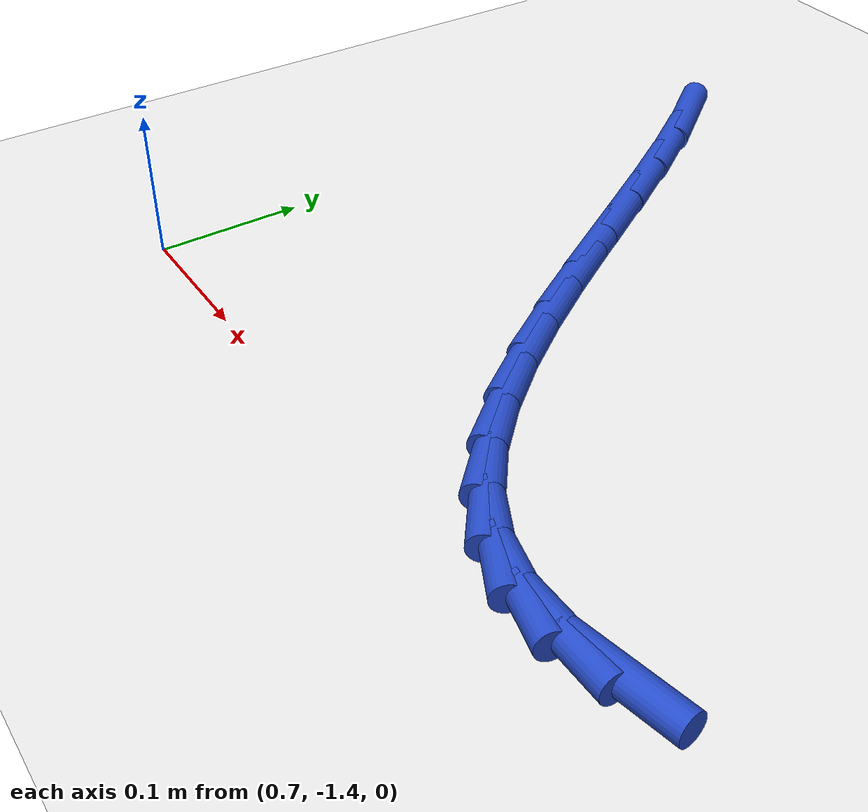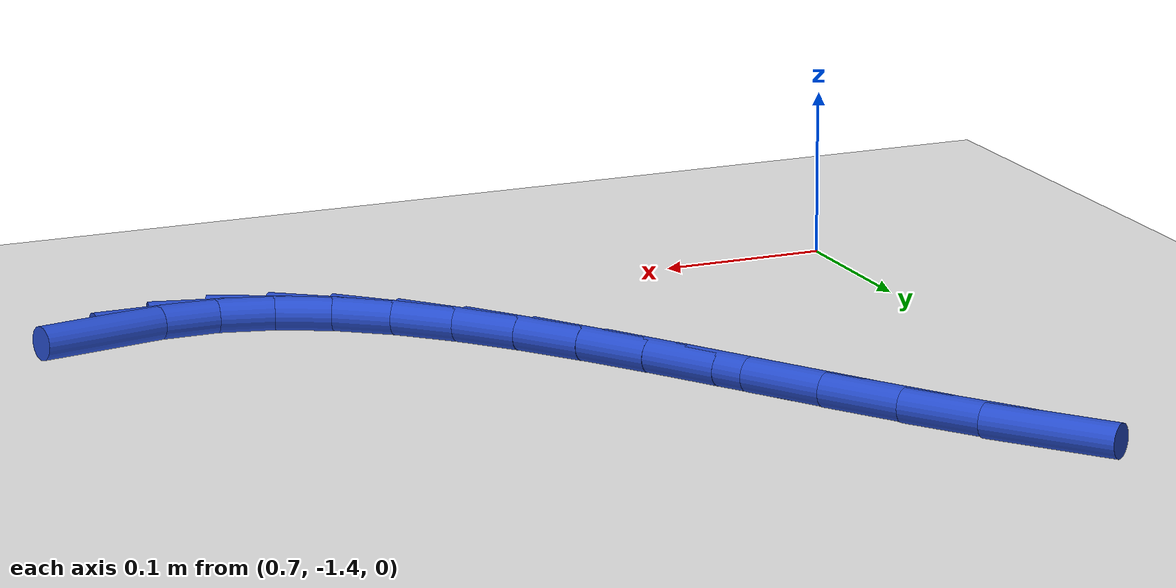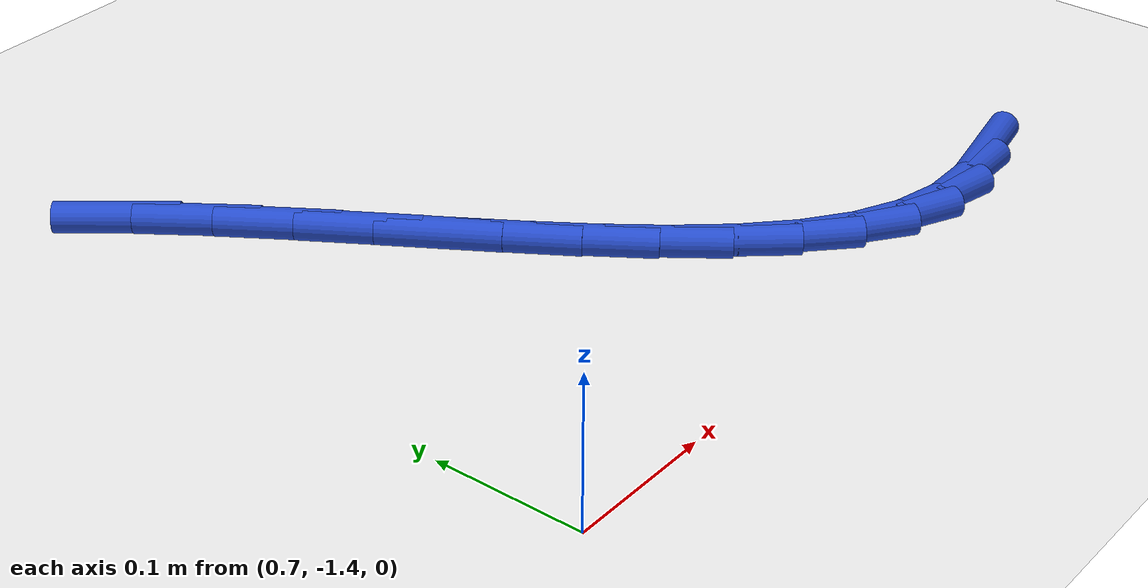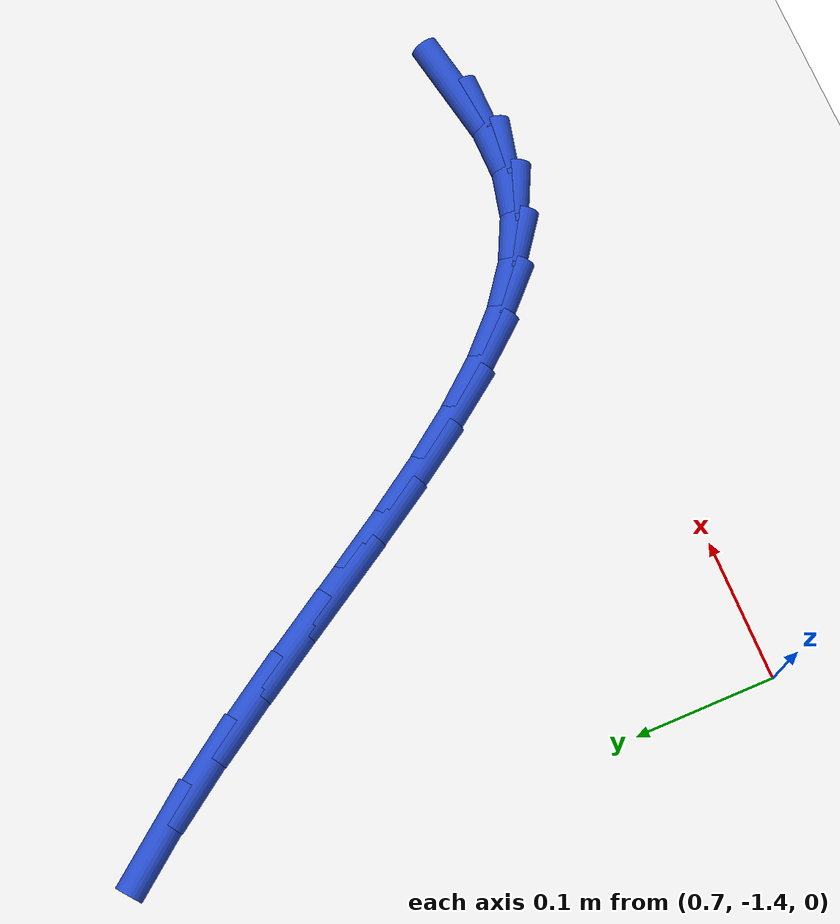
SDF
<sdf version="1.6">
 <world name="default">
  <model name="ground_plane">
   <static>1</static>
   <link name="link">
    <collision name="collision">
     <geometry><plane><normal>0 0 1</normal><size>100 100</size></plane></geometry>
     <surface><friction><ode><mu>100</mu><mu2>50</mu2></ode></friction></surface>
    </collision>
    <visual name="visual">
     <cast_shadows>0</cast_shadows>
     <geometry><plane><normal>0 0 1</normal><size>100 100</size></plane></geometry>
     <material>
      <script><uri>file://media/materials/scripts/gazebo.material</uri><name>Gazebo/WhiteGlow</name></script>
     </material>
    </visual>
   </link>
  </model>
  <model name="line">
   <link name="link_136">
    <pose>1.1687083589276375 -1.371321412251057 0.01 0 1.57 0.1909762075728887</pose>
    <collision name="collision">
     <geometry><cylinder><radius>0.01</radius><length>0.08</length></cylinder></geometry>
    </collision>
    <visual name="visual">
     <material>
      <script><name>Gazebo/Blue</name><uri>file://media/materials/scripts/gazebo.material</uri></script>
     </material>
     <geometry><cylinder><radius>0.01</radius><length>0.08</length></cylinder></geometry>
    </visual>
   </link>
   <link name="link_137">
    <pose>1.131497150620721 -1.3785155423185427 0.01 0 1.57 0.00800130340259082</pose>
    <collision name="collision">
     <geometry><cylinder><radius>0.01</radius><length>0.08</length></cylinder></geometry>
    </collision>
    <visual name="visual">
     <material>
      <script><name>Gazebo/Blue</name><uri>file://media/materials/scripts/gazebo.material</uri></script>
     </material>
     <geometry><cylinder><radius>0.01</radius><length>0.08</length></cylinder></geometry>
    </visual>
   </link>
   <link name="link_138">
    <pose>1.0963750646653139 -1.378796570781657 0.01 0 1.57 -0.23026580055183332</pose>
    <collision name="collision">
     <geometry><cylinder><radius>0.01</radius><length>0.08</length></cylinder></geometry>
    </collision>
    <visual name="visual">
     <material>
      <script><name>Gazebo/Blue</name><uri>file://media/materials/scripts/gazebo.material</uri></script>
     </material>
     <geometry><cylinder><radius>0.01</radius><length>0.08</length></cylinder></geometry>
    </visual>
   </link>
   <link name="link_139">
    <pose>1.0634215293695404 -1.3710714793836298 0.01 0 1.57 -0.45424558994043807</pose>
    <collision name="collision">
     <geometry><cylinder><radius>0.01</radius><length>0.08</length></cylinder></geometry>
    </collision>
    <visual name="visual">
     <material>
      <script><name>Gazebo/Blue</name><uri>file://media/materials/scripts/gazebo.material</uri></script>
     </material>
     <geometry><cylinder><radius>0.01</radius><length>0.08</length></cylinder></geometry>
    </visual>
   </link>
   <link name="link_140">
    <pose>1.0323841569179895 -1.355915864513487 0.01 0 1.57 -0.6355337480167395</pose>
    <collision name="collision">
     <geometry><cylinder><radius>0.01</radius><length>0.08</length></cylinder></geometry>
    </collision>
    <visual name="visual">
     <material>
      <script><name>Gazebo/Blue</name><uri>file://media/materials/scripts/gazebo.material</uri></script>
     </material>
     <geometry><cylinder><radius>0.01</radius><length>0.08</length></cylinder></geometry>
    </visual>
   </link>
   <link name="link_141">
    <pose>1.0029509288916563 -1.3342051889363356 0.01 0 1.57 -0.7718781894130441</pose>
    <collision name="collision">
     <geometry><cylinder><radius>0.01</radius><length>0.08</length></cylinder></geometry>
    </collision>
    <visual name="visual">
     <material>
      <script><name>Gazebo/Blue</name><uri>file://media/materials/scripts/gazebo.material</uri></script>
     </material>
     <geometry><cylinder><radius>0.01</radius><length>0.08</length></cylinder></geometry>
    </visual>
   </link>
   <link name="link_142">
    <pose>0.9748098268715358 -1.306814915417285 0.01 0 1.57 -0.8699970417854505</pose>
    <collision name="collision">
     <geometry><cylinder><radius>0.01</radius><length>0.08</length></cylinder></geometry>
    </collision>
    <visual name="visual">
     <material>
      <script><name>Gazebo/Blue</name><uri>file://media/materials/scripts/gazebo.material</uri></script>
     </material>
     <geometry><cylinder><radius>0.01</radius><length>0.08</length></cylinder></geometry>
    </visual>
   </link>
   <link name="link_143">
    <pose>0.9476488324386247 -1.274620506721444 0.01 0 1.57 -0.937999863923272</pose>
    <collision name="collision">
     <geometry><cylinder><radius>0.01</radius><length>0.08</length></cylinder></geometry>
    </collision>
    <visual name="visual">
     <material>
      <script><name>Gazebo/Blue</name><uri>file://media/materials/scripts/gazebo.material</uri></script>
     </material>
     <geometry><cylinder><radius>0.01</radius><length>0.08</length></cylinder></geometry>
    </visual>
   </link>
   <link name="link_144">
    <pose>0.9211559271739183 -1.238497425613922 0.01 0 1.57 -0.9824526091765833</pose>
    <collision name="collision">
     <geometry><cylinder><radius>0.01</radius><length>0.08</length></cylinder></geometry>
    </collision>
    <visual name="visual">
     <material>
      <script><name>Gazebo/Blue</name><uri>file://media/materials/scripts/gazebo.material</uri></script>
     </material>
     <geometry><cylinder><radius>0.01</radius><length>0.08</length></cylinder></geometry>
    </visual>
   </link>
   <link name="link_145">
    <pose>0.8950190926584121 -1.1993211348598278 0.01 0 1.57 -1.0079219767999836</pose>
    <collision name="collision">
     <geometry><cylinder><radius>0.01</radius><length>0.08</length></cylinder></geometry>
    </collision>
    <visual name="visual">
     <material>
      <script><name>Gazebo/Blue</name><uri>file://media/materials/scripts/gazebo.material</uri></script>
     </material>
     <geometry><cylinder><radius>0.01</radius><length>0.08</length></cylinder></geometry>
    </visual>
   </link>
   <link name="link_146">
    <pose>0.8689263104731018 -1.15796709722427 0.01 0 1.57 -1.017261127790327</pose>
    <collision name="collision">
     <geometry><cylinder><radius>0.01</radius><length>0.08</length></cylinder></geometry>
    </collision>
    <visual name="visual">
     <material>
      <script><name>Gazebo/Blue</name><uri>file://media/materials/scripts/gazebo.material</uri></script>
     </material>
     <geometry><cylinder><radius>0.01</radius><length>0.08</length></cylinder></geometry>
    </visual>
   </link>
   <link name="link_147">
    <pose>0.8425655621989827 -1.1153107754723572 0.01 0 1.57 -1.0119672369317636</pose>
    <collision name="collision">
     <geometry><cylinder><radius>0.01</radius><length>0.08</length></cylinder></geometry>
    </collision>
    <visual name="visual">
     <material>
      <script><name>Gazebo/Blue</name><uri>file://media/materials/scripts/gazebo.material</uri></script>
     </material>
     <geometry><cylinder><radius>0.01</radius><length>0.08</length></cylinder></geometry>
    </visual>
   </link>
   <link name="link_148">
    <pose>0.8156248294170502 -1.0722276323691977 0.01 0 1.57 -0.9924399138090572</pose>
    <collision name="collision">
     <geometry><cylinder><radius>0.01</radius><length>0.08</length></cylinder></geometry>
    </collision>
    <visual name="visual">
     <material>
      <script><name>Gazebo/Blue</name><uri>file://media/materials/scripts/gazebo.material</uri></script>
     </material>
     <geometry><cylinder><radius>0.01</radius><length>0.08</length></cylinder></geometry>
    </visual>
   </link>
   <link name="link_149">
    <pose>0.7877920937083005 -1.029593130679902 0.01 0 1.57 -0.9581319108410102</pose>
    <collision name="collision">
     <geometry><cylinder><radius>0.01</radius><length>0.08</length></cylinder></geometry>
    </collision>
    <visual name="visual">
     <material>
      <script><name>Gazebo/Blue</name><uri>file://media/materials/scripts/gazebo.material</uri></script>
     </material>
     <geometry><cylinder><radius>0.01</radius><length>0.08</length></cylinder></geometry>
    </visual>
   </link>
   <link name="link_150">
    <pose>0.7587553366537296 -0.9882827331695783 0.01 0 1.57 -0.9076336572436129</pose>
    <collision name="collision">
     <geometry><cylinder><radius>0.01</radius><length>0.08</length></cylinder></geometry>
    </collision>
    <visual name="visual">
     <material>
      <script><name>Gazebo/Blue</name><uri>file://media/materials/scripts/gazebo.material</uri></script>
     </material>
     <geometry><cylinder><radius>0.01</radius><length>0.08</length></cylinder></geometry>
    </visual>
   </link>
  </model>
 </world>
</sdf>
